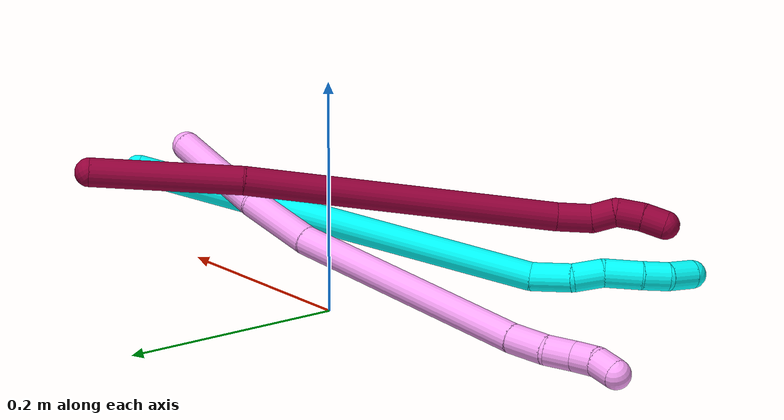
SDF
<sdf version="1.7">
 <world name="default">
  <model name="photoneo_s_sensor">
   <static>1</static>
   <pose>0 0 2 1.57079 1.57079 3.14159</pose>
   <link name="link">
    <inertial><mass>0.1</mass></inertial>
    <sensor name="sensor" type="depth">
     <update_rate>30</update_rate>
     <camera>
      <horizontal_fov>1.22</horizontal_fov>
      <image><width>1920</width><height>1200</height><format>B8G8R8</format></image>
      <clip><near>0.1</near><far>4</far></clip>
      <depth_camera><output>points</output></depth_camera>
     </camera>
     <plugin name="camera_plugin" filename="libgazebo_ros_depth_camera.so">
      <baseline>0.2</baseline>
      <alwaysOn>1</alwaysOn>
      <updateRate>0.0</updateRate>
      <cameraName>camera_ir</cameraName>
      <imageTopicName>/camera/color/image_raw</imageTopicName>
      <cameraInfoTopicName>/camera/color/camera_info</cameraInfoTopicName>
      <depthImageTopicName>/camera/depth/image_raw</depthImageTopicName>
      <depthImageCameraInfoTopicName>/camera/depth/camera_info</depthImageCameraInfoTopicName>
      <pointCloudTopicName>/camera/depth/points</pointCloudTopicName>
      <frameName>fr_optical</frameName>
      <pointCloudCutoff>0.1</pointCloudCutoff>
      <pointCloudCutoffMax>2.0</pointCloudCutoffMax>
      <distortionK1>0</distortionK1>
      <distortionK2>0</distortionK2>
      <distortionK3>0</distortionK3>
      <distortionT1>0</distortionT1>
      <distortionT2>0</distortionT2>
      <CxPrime>0</CxPrime>
      <Cx>0</Cx>
      <Cy>0</Cy>
      <focalLength>0</focalLength>
      <hackBaseline>0</hackBaseline>
     </plugin>
    </sensor>
   </link>
  </model>
  <model name="bin">
   <static>1</static>
   <link name="bottom">
    <collision name="collision-bottom">
     <pose>0 0 -0.01 0 -0 0</pose>
     <geometry><box><size>0.8 0.6 0.02</size></box></geometry>
     <surface>
      <friction><ode><mu>100</mu><mu2>100</mu2></ode></friction>
      <contact><collide_bitmask>65535</collide_bitmask></contact>
     </surface>
    </collision>
   </link>
   <link name="west_wall">
    <collision name="collision-west_wall">
     <pose>-0.41 0 0.1 0 -0 0</pose>
     <geometry><box><size>0.02 0.6 0.2</size></box></geometry>
     <surface>
      <friction><ode><mu>100</mu><mu2>100</mu2></ode></friction>
      <contact><collide_bitmask>65535</collide_bitmask></contact>
     </surface>
    </collision>
   </link>
   <link name="east_wall">
    <collision name="collision-east_wall">
     <pose>0.41 0 0.1 0 -0 0</pose>
     <geometry><box><size>0.02 0.6 0.2</size></box></geometry>
     <surface>
      <friction><ode><mu>100</mu><mu2>100</mu2></ode></friction>
      <contact><collide_bitmask>65535</collide_bitmask></contact>
     </surface>
    </collision>
   </link>
   <link name="south_wall">
    <collision name="collision-south_wall">
     <pose>0 -0.31 0.1 0 -0 0</pose>
     <geometry><box><size>0.8 0.02 0.2</size></box></geometry>
     <surface>
      <friction><ode><mu>100</mu><mu2>100</mu2></ode></friction>
      <contact><collide_bitmask>65535</collide_bitmask></contact>
     </surface>
    </collision>
   </link>
   <link name="north_wall">
    <collision name="collision-north_wall">
     <pose>0 0.31 0.1 0 -0 0</pose>
     <geometry><box><size>0.8 0.02 0.2</size></box></geometry>
     <surface>
      <friction><ode><mu>100</mu><mu2>100</mu2></ode></friction>
      <contact><collide_bitmask>65535</collide_bitmask></contact>
     </surface>
    </collision>
   </link>
  </model>
  <model name="3">
   <static>0</static>
   <link name="3">
    <collision name="collision-cylinder-e_1_1_4">
     <pose>-0.037752 -0.043192 -0.168126 2.89013 -0.214148 -1.4094</pose>
     <geometry><cylinder><radius>0.0125</radius><length>0.355287</length></cylinder></geometry>
     <surface>
      <friction><ode><mu>1.16</mu><mu2>1.16</mu2><slip1>0</slip1><slip2>0</slip2></ode></friction>
      <contact><ode><kp>1e+06</kp><kd>1</kd><max_vel>0</max_vel><min_depth>0.001</min_depth></ode></contact>
     </surface>
    </collision>
    <visual name="visual-cylinder-e_1_1_4">
     <pose>-0.037752 -0.043192 -0.168126 2.89013 -0.214148 -1.4094</pose>
     <geometry><cylinder><radius>0.0125</radius><length>0.355287</length></cylinder></geometry>
     <material><ambient>0.003922 1 0.996078 1</ambient></material>
    </visual>
    <collision name="collision-cylinder-e_2_4_5">
     <pose>-0.080118 -0.095655 -0.351369 2.59151 -0.254588 -0.851583</pose>
     <geometry><cylinder><radius>0.0125</radius><length>0.036646</length></cylinder></geometry>
     <surface>
      <friction><ode><mu>1.16</mu><mu2>1.16</mu2><slip1>0</slip1><slip2>0</slip2></ode></friction>
      <contact><ode><kp>1e+06</kp><kd>1</kd><max_vel>0</max_vel><min_depth>0.001</min_depth></ode></contact>
     </surface>
    </collision>
    <visual name="visual-cylinder-e_2_4_5">
     <pose>-0.080118 -0.095655 -0.351369 2.59151 -0.254588 -0.851583</pose>
     <geometry><cylinder><radius>0.0125</radius><length>0.036646</length></cylinder></geometry>
     <material><ambient>0.003922 1 0.996078 1</ambient></material>
    </visual>
    <collision name="collision-cylinder-e_3_5_6">
     <pose>-0.083504 -0.112171 -0.377684 2.56723 0.091865 0.308787</pose>
     <geometry><cylinder><radius>0.0125</radius><length>0.02679</length></cylinder></geometry>
     <surface>
      <friction><ode><mu>1.16</mu><mu2>1.16</mu2><slip1>0</slip1><slip2>0</slip2></ode></friction>
      <contact><ode><kp>1e+06</kp><kd>1</kd><max_vel>0</max_vel><min_depth>0.001</min_depth></ode></contact>
     </surface>
    </collision>
    <visual name="visual-cylinder-e_3_5_6">
     <pose>-0.083504 -0.112171 -0.377684 2.56723 0.091865 0.308787</pose>
     <geometry><cylinder><radius>0.0125</radius><length>0.02679</length></cylinder></geometry>
     <material><ambient>0.003922 1 0.996078 1</ambient></material>
    </visual>
    <collision name="collision-cylinder-e_4_6_7">
     <pose>-0.082581 -0.125444 -0.404382 2.7708 -0.018375 -0.0979</pose>
     <geometry><cylinder><radius>0.0125</radius><length>0.033266</length></cylinder></geometry>
     <surface>
      <friction><ode><mu>1.16</mu><mu2>1.16</mu2><slip1>0</slip1><slip2>0</slip2></ode></friction>
      <contact><ode><kp>1e+06</kp><kd>1</kd><max_vel>0</max_vel><min_depth>0.001</min_depth></ode></contact>
     </surface>
    </collision>
    <visual name="visual-cylinder-e_4_6_7">
     <pose>-0.082581 -0.125444 -0.404382 2.7708 -0.018375 -0.0979</pose>
     <geometry><cylinder><radius>0.0125</radius><length>0.033266</length></cylinder></geometry>
     <material><ambient>0.003922 1 0.996078 1</ambient></material>
    </visual>
    <collision name="collision-cylinder-e_5_7_8">
     <pose>-0.081372 -0.135155 -0.430953 2.82029 0.129124 0.759239</pose>
     <geometry><cylinder><radius>0.0125</radius><length>0.023531</length></cylinder></geometry>
     <surface>
      <friction><ode><mu>1.16</mu><mu2>1.16</mu2><slip1>0</slip1><slip2>0</slip2></ode></friction>
      <contact><ode><kp>1e+06</kp><kd>1</kd><max_vel>0</max_vel><min_depth>0.001</min_depth></ode></contact>
     </surface>
    </collision>
    <visual name="visual-cylinder-e_5_7_8">
     <pose>-0.081372 -0.135155 -0.430953 2.82029 0.129124 0.759239</pose>
     <geometry><cylinder><radius>0.0125</radius><length>0.023531</length></cylinder></geometry>
     <material><ambient>0.003922 1 0.996078 1</ambient></material>
    </visual>
    <collision name="collision-cylinder-e_6_8_2">
     <pose>-0.074537 -0.14179 -0.452644 2.87062 0.449637 2.06648</pose>
     <geometry><cylinder><radius>0.0125</radius><length>0.024479</length></cylinder></geometry>
     <surface>
      <friction><ode><mu>1.16</mu><mu2>1.16</mu2><slip1>0</slip1><slip2>0</slip2></ode></friction>
      <contact><ode><kp>1e+06</kp><kd>1</kd><max_vel>0</max_vel><min_depth>0.001</min_depth></ode></contact>
     </surface>
    </collision>
    <visual name="visual-cylinder-e_6_8_2">
     <pose>-0.074537 -0.14179 -0.452644 2.87062 0.449637 2.06648</pose>
     <geometry><cylinder><radius>0.0125</radius><length>0.024479</length></cylinder></geometry>
     <material><ambient>0.003922 1 0.996078 1</ambient></material>
    </visual>
    <collision name="collision-sphere-2">
     <pose>-0.069217 -0.144741 -0.463265 0 -0 0</pose>
     <geometry><sphere><radius>0.0125</radius></sphere></geometry>
     <surface>
      <friction><ode><mu>1.16</mu><mu2>1.16</mu2><slip1>0</slip1><slip2>0</slip2></ode></friction>
      <contact><ode><kp>1e+06</kp><kd>1</kd><max_vel>0</max_vel><min_depth>0.001</min_depth></ode></contact>
     </surface>
    </collision>
    <visual name="visual-sphere-2">
     <pose>-0.069217 -0.144741 -0.463265 0 -0 0</pose>
     <geometry><sphere><radius>0.0125</radius></sphere></geometry>
     <material><ambient>0.003922 1 0.996078 1</ambient></material>
    </visual>
    <collision name="collision-sphere-4">
     <pose>-0.075504 -0.086385 -0.336252 0 -0 0</pose>
     <geometry><sphere><radius>0.0125</radius></sphere></geometry>
     <surface>
      <friction><ode><mu>1.16</mu><mu2>1.16</mu2><slip1>0</slip1><slip2>0</slip2></ode></friction>
      <contact><ode><kp>1e+06</kp><kd>1</kd><max_vel>0</max_vel><min_depth>0.001</min_depth></ode></contact>
     </surface>
    </collision>
    <visual name="visual-sphere-4">
     <pose>-0.075504 -0.086385 -0.336252 0 -0 0</pose>
     <geometry><sphere><radius>0.0125</radius></sphere></geometry>
     <material><ambient>0.003922 1 0.996078 1</ambient></material>
    </visual>
    <collision name="collision-sphere-1">
     <geometry><sphere><radius>0.0125</radius></sphere></geometry>
     <surface>
      <friction><ode><mu>1.16</mu><mu2>1.16</mu2><slip1>0</slip1><slip2>0</slip2></ode></friction>
      <contact><ode><kp>1e+06</kp><kd>1</kd><max_vel>0</max_vel><min_depth>0.001</min_depth></ode></contact>
     </surface>
    </collision>
    <visual name="visual-sphere-1">
     <geometry><sphere><radius>0.0125</radius></sphere></geometry>
     <material><ambient>0.003922 1 0.996078 1</ambient></material>
    </visual>
    <collision name="collision-sphere-8">
     <pose>-0.079856 -0.13884 -0.442024 0 -0 0</pose>
     <geometry><sphere><radius>0.0125</radius></sphere></geometry>
     <surface>
      <friction><ode><mu>1.16</mu><mu2>1.16</mu2><slip1>0</slip1><slip2>0</slip2></ode></friction>
      <contact><ode><kp>1e+06</kp><kd>1</kd><max_vel>0</max_vel><min_depth>0.001</min_depth></ode></contact>
     </surface>
    </collision>
    <visual name="visual-sphere-8">
     <pose>-0.079856 -0.13884 -0.442024 0 -0 0</pose>
     <geometry><sphere><radius>0.0125</radius></sphere></geometry>
     <material><ambient>0.003922 1 0.996078 1</ambient></material>
    </visual>
    <collision name="collision-sphere-5">
     <pose>-0.084733 -0.104925 -0.366486 0 -0 0</pose>
     <geometry><sphere><radius>0.0125</radius></sphere></geometry>
     <surface>
      <friction><ode><mu>1.16</mu><mu2>1.16</mu2><slip1>0</slip1><slip2>0</slip2></ode></friction>
      <contact><ode><kp>1e+06</kp><kd>1</kd><max_vel>0</max_vel><min_depth>0.001</min_depth></ode></contact>
     </surface>
    </collision>
    <visual name="visual-sphere-5">
     <pose>-0.084733 -0.104925 -0.366486 0 -0 0</pose>
     <geometry><sphere><radius>0.0125</radius></sphere></geometry>
     <material><ambient>0.003922 1 0.996078 1</ambient></material>
    </visual>
    <collision name="collision-sphere-6">
     <pose>-0.082275 -0.119418 -0.388882 0 -0 0</pose>
     <geometry><sphere><radius>0.0125</radius></sphere></geometry>
     <surface>
      <friction><ode><mu>1.16</mu><mu2>1.16</mu2><slip1>0</slip1><slip2>0</slip2></ode></friction>
      <contact><ode><kp>1e+06</kp><kd>1</kd><max_vel>0</max_vel><min_depth>0.001</min_depth></ode></contact>
     </surface>
    </collision>
    <visual name="visual-sphere-6">
     <pose>-0.082275 -0.119418 -0.388882 0 -0 0</pose>
     <geometry><sphere><radius>0.0125</radius></sphere></geometry>
     <material><ambient>0.003922 1 0.996078 1</ambient></material>
    </visual>
    <collision name="collision-sphere-7">
     <pose>-0.082887 -0.13147 -0.419882 0 -0 0</pose>
     <geometry><sphere><radius>0.0125</radius></sphere></geometry>
     <surface>
      <friction><ode><mu>1.16</mu><mu2>1.16</mu2><slip1>0</slip1><slip2>0</slip2></ode></friction>
      <contact><ode><kp>1e+06</kp><kd>1</kd><max_vel>0</max_vel><min_depth>0.001</min_depth></ode></contact>
     </surface>
    </collision>
    <visual name="visual-sphere-7">
     <pose>-0.082887 -0.13147 -0.419882 0 -0 0</pose>
     <geometry><sphere><radius>0.0125</radius></sphere></geometry>
     <material><ambient>0.003922 1 0.996078 1</ambient></material>
    </visual>
    <inertial>
     <pose>-0.050145 -0.065361 -0.234802 0 -0 0</pose>
     <mass>0.5</mass>
     <inertia>
      <ixx>-0.003024</ixx>
      <ixy>0</ixy>
      <ixz>0</ixz>
      <iyy>-0.004027</iyy>
      <iyz>0</iyz>
      <izz>0.00168</izz>
     </inertia>
    </inertial>
   </link>
   <pose>0.187934 0.068357 0.09581 -1.12445 -0.220109 -0.631286</pose>
  </model>
  <model name="4">
   <static>0</static>
   <link name="4">
    <collision name="collision-cylinder-e_1_1_4">
     <pose>-0.054612 -0.006445 0.005133 0.898232 -1.42105 -0.786235</pose>
     <geometry><cylinder><radius>0.0125</radius><length>0.110461</length></cylinder></geometry>
     <surface>
      <friction><ode><mu>1.16</mu><mu2>1.16</mu2><slip1>0</slip1><slip2>0</slip2></ode></friction>
      <contact><ode><kp>1e+06</kp><kd>1</kd><max_vel>0</max_vel><min_depth>0.001</min_depth></ode></contact>
     </surface>
    </collision>
    <visual name="visual-cylinder-e_1_1_4">
     <pose>-0.054612 -0.006445 0.005133 0.898232 -1.42105 -0.786235</pose>
     <geometry><cylinder><radius>0.0125</radius><length>0.110461</length></cylinder></geometry>
     <material><ambient>1 0.65098 0.996078 1</ambient></material>
    </visual>
    <collision name="collision-cylinder-e_2_4_5">
     <pose>-0.141984 -0.02128 0.00933 1.68197 -1.3186 -1.42778</pose>
     <geometry><cylinder><radius>0.0125</radius><length>0.067659</length></cylinder></geometry>
     <surface>
      <friction><ode><mu>1.16</mu><mu2>1.16</mu2><slip1>0</slip1><slip2>0</slip2></ode></friction>
      <contact><ode><kp>1e+06</kp><kd>1</kd><max_vel>0</max_vel><min_depth>0.001</min_depth></ode></contact>
     </surface>
    </collision>
    <visual name="visual-cylinder-e_2_4_5">
     <pose>-0.141984 -0.02128 0.00933 1.68197 -1.3186 -1.42778</pose>
     <geometry><cylinder><radius>0.0125</radius><length>0.067659</length></cylinder></geometry>
     <material><ambient>1 0.65098 0.996078 1</ambient></material>
    </visual>
    <collision name="collision-cylinder-e_3_5_6">
     <pose>-0.277369 -0.071227 0.010292 1.52515 -1.18566 -1.14372</pose>
     <geometry><cylinder><radius>0.0125</radius><length>0.221473</length></cylinder></geometry>
     <surface>
      <friction><ode><mu>1.16</mu><mu2>1.16</mu2><slip1>0</slip1><slip2>0</slip2></ode></friction>
      <contact><ode><kp>1e+06</kp><kd>1</kd><max_vel>0</max_vel><min_depth>0.001</min_depth></ode></contact>
     </surface>
    </collision>
    <visual name="visual-cylinder-e_3_5_6">
     <pose>-0.277369 -0.071227 0.010292 1.52515 -1.18566 -1.14372</pose>
     <geometry><cylinder><radius>0.0125</radius><length>0.221473</length></cylinder></geometry>
     <material><ambient>1 0.65098 0.996078 1</ambient></material>
    </visual>
    <collision name="collision-cylinder-e_4_6_7">
     <pose>-0.394499 -0.120314 0.013057 1.45617 -1.08939 -0.990395</pose>
     <geometry><cylinder><radius>0.0125</radius><length>0.032731</length></cylinder></geometry>
     <surface>
      <friction><ode><mu>1.16</mu><mu2>1.16</mu2><slip1>0</slip1><slip2>0</slip2></ode></friction>
      <contact><ode><kp>1e+06</kp><kd>1</kd><max_vel>0</max_vel><min_depth>0.001</min_depth></ode></contact>
     </surface>
    </collision>
    <visual name="visual-cylinder-e_4_6_7">
     <pose>-0.394499 -0.120314 0.013057 1.45617 -1.08939 -0.990395</pose>
     <geometry><cylinder><radius>0.0125</radius><length>0.032731</length></cylinder></geometry>
     <material><ambient>1 0.65098 0.996078 1</ambient></material>
    </visual>
    <collision name="collision-cylinder-e_5_7_8">
     <pose>-0.418182 -0.135916 0.012748 1.71537 -0.843999 -0.957577</pose>
     <geometry><cylinder><radius>0.0125</radius><length>0.024559</length></cylinder></geometry>
     <surface>
      <friction><ode><mu>1.16</mu><mu2>1.16</mu2><slip1>0</slip1><slip2>0</slip2></ode></friction>
      <contact><ode><kp>1e+06</kp><kd>1</kd><max_vel>0</max_vel><min_depth>0.001</min_depth></ode></contact>
     </surface>
    </collision>
    <visual name="visual-cylinder-e_5_7_8">
     <pose>-0.418182 -0.135916 0.012748 1.71537 -0.843999 -0.957577</pose>
     <geometry><cylinder><radius>0.0125</radius><length>0.024559</length></cylinder></geometry>
     <material><ambient>1 0.65098 0.996078 1</ambient></material>
    </visual>
    <collision name="collision-cylinder-e_6_8_9">
     <pose>-0.437125 -0.148836 0.013787 1.14204 -1.07146 -0.728664</pose>
     <geometry><cylinder><radius>0.0125</radius><length>0.022251</length></cylinder></geometry>
     <surface>
      <friction><ode><mu>1.16</mu><mu2>1.16</mu2><slip1>0</slip1><slip2>0</slip2></ode></friction>
      <contact><ode><kp>1e+06</kp><kd>1</kd><max_vel>0</max_vel><min_depth>0.001</min_depth></ode></contact>
     </surface>
    </collision>
    <visual name="visual-cylinder-e_6_8_9">
     <pose>-0.437125 -0.148836 0.013787 1.14204 -1.07146 -0.728664</pose>
     <geometry><cylinder><radius>0.0125</radius><length>0.022251</length></cylinder></geometry>
     <material><ambient>1 0.65098 0.996078 1</ambient></material>
    </visual>
    <collision name="collision-cylinder-e_7_9_2">
     <pose>-0.457033 -0.156124 0.016206 1.48749 -1.33355 -1.25336</pose>
     <geometry><cylinder><radius>0.0125</radius><length>0.020865</length></cylinder></geometry>
     <surface>
      <friction><ode><mu>1.16</mu><mu2>1.16</mu2><slip1>0</slip1><slip2>0</slip2></ode></friction>
      <contact><ode><kp>1e+06</kp><kd>1</kd><max_vel>0</max_vel><min_depth>0.001</min_depth></ode></contact>
     </surface>
    </collision>
    <visual name="visual-cylinder-e_7_9_2">
     <pose>-0.457033 -0.156124 0.016206 1.48749 -1.33355 -1.25336</pose>
     <geometry><cylinder><radius>0.0125</radius><length>0.020865</length></cylinder></geometry>
     <material><ambient>1 0.65098 0.996078 1</ambient></material>
    </visual>
    <collision name="collision-sphere-2">
     <pose>-0.467173 -0.158568 0.01641 0 -0 0</pose>
     <geometry><sphere><radius>0.0125</radius></sphere></geometry>
     <surface>
      <friction><ode><mu>1.16</mu><mu2>1.16</mu2><slip1>0</slip1><slip2>0</slip2></ode></friction>
      <contact><ode><kp>1e+06</kp><kd>1</kd><max_vel>0</max_vel><min_depth>0.001</min_depth></ode></contact>
     </surface>
    </collision>
    <visual name="visual-sphere-2">
     <pose>-0.467173 -0.158568 0.01641 0 -0 0</pose>
     <geometry><sphere><radius>0.0125</radius></sphere></geometry>
     <material><ambient>1 0.65098 0.996078 1</ambient></material>
    </visual>
    <collision name="collision-sphere-9">
     <pose>-0.446893 -0.153681 0.016002 0 -0 0</pose>
     <geometry><sphere><radius>0.0125</radius></sphere></geometry>
     <surface>
      <friction><ode><mu>1.16</mu><mu2>1.16</mu2><slip1>0</slip1><slip2>0</slip2></ode></friction>
      <contact><ode><kp>1e+06</kp><kd>1</kd><max_vel>0</max_vel><min_depth>0.001</min_depth></ode></contact>
     </surface>
    </collision>
    <visual name="visual-sphere-9">
     <pose>-0.446893 -0.153681 0.016002 0 -0 0</pose>
     <geometry><sphere><radius>0.0125</radius></sphere></geometry>
     <material><ambient>1 0.65098 0.996078 1</ambient></material>
    </visual>
    <collision name="collision-sphere-4">
     <pose>-0.109225 -0.01289 0.010266 0 -0 0</pose>
     <geometry><sphere><radius>0.0125</radius></sphere></geometry>
     <surface>
      <friction><ode><mu>1.16</mu><mu2>1.16</mu2><slip1>0</slip1><slip2>0</slip2></ode></friction>
      <contact><ode><kp>1e+06</kp><kd>1</kd><max_vel>0</max_vel><min_depth>0.001</min_depth></ode></contact>
     </surface>
    </collision>
    <visual name="visual-sphere-4">
     <pose>-0.109225 -0.01289 0.010266 0 -0 0</pose>
     <geometry><sphere><radius>0.0125</radius></sphere></geometry>
     <material><ambient>1 0.65098 0.996078 1</ambient></material>
    </visual>
    <collision name="collision-sphere-1">
     <geometry><sphere><radius>0.0125</radius></sphere></geometry>
     <surface>
      <friction><ode><mu>1.16</mu><mu2>1.16</mu2><slip1>0</slip1><slip2>0</slip2></ode></friction>
      <contact><ode><kp>1e+06</kp><kd>1</kd><max_vel>0</max_vel><min_depth>0.001</min_depth></ode></contact>
     </surface>
    </collision>
    <visual name="visual-sphere-1">
     <geometry><sphere><radius>0.0125</radius></sphere></geometry>
     <material><ambient>1 0.65098 0.996078 1</ambient></material>
    </visual>
    <collision name="collision-sphere-8">
     <pose>-0.427358 -0.14399 0.011572 0 -0 0</pose>
     <geometry><sphere><radius>0.0125</radius></sphere></geometry>
     <surface>
      <friction><ode><mu>1.16</mu><mu2>1.16</mu2><slip1>0</slip1><slip2>0</slip2></ode></friction>
      <contact><ode><kp>1e+06</kp><kd>1</kd><max_vel>0</max_vel><min_depth>0.001</min_depth></ode></contact>
     </surface>
    </collision>
    <visual name="visual-sphere-8">
     <pose>-0.427358 -0.14399 0.011572 0 -0 0</pose>
     <geometry><sphere><radius>0.0125</radius></sphere></geometry>
     <material><ambient>1 0.65098 0.996078 1</ambient></material>
    </visual>
    <collision name="collision-sphere-5">
     <pose>-0.174744 -0.029669 0.008393 0 -0 0</pose>
     <geometry><sphere><radius>0.0125</radius></sphere></geometry>
     <surface>
      <friction><ode><mu>1.16</mu><mu2>1.16</mu2><slip1>0</slip1><slip2>0</slip2></ode></friction>
      <contact><ode><kp>1e+06</kp><kd>1</kd><max_vel>0</max_vel><min_depth>0.001</min_depth></ode></contact>
     </surface>
    </collision>
    <visual name="visual-sphere-5">
     <pose>-0.174744 -0.029669 0.008393 0 -0 0</pose>
     <geometry><sphere><radius>0.0125</radius></sphere></geometry>
     <material><ambient>1 0.65098 0.996078 1</ambient></material>
    </visual>
    <collision name="collision-sphere-6">
     <pose>-0.379994 -0.112786 0.01219 0 -0 0</pose>
     <geometry><sphere><radius>0.0125</radius></sphere></geometry>
     <surface>
      <friction><ode><mu>1.16</mu><mu2>1.16</mu2><slip1>0</slip1><slip2>0</slip2></ode></friction>
      <contact><ode><kp>1e+06</kp><kd>1</kd><max_vel>0</max_vel><min_depth>0.001</min_depth></ode></contact>
     </surface>
    </collision>
    <visual name="visual-sphere-6">
     <pose>-0.379994 -0.112786 0.01219 0 -0 0</pose>
     <geometry><sphere><radius>0.0125</radius></sphere></geometry>
     <material><ambient>1 0.65098 0.996078 1</ambient></material>
    </visual>
    <collision name="collision-sphere-7">
     <pose>-0.409005 -0.127842 0.013924 0 -0 0</pose>
     <geometry><sphere><radius>0.0125</radius></sphere></geometry>
     <surface>
      <friction><ode><mu>1.16</mu><mu2>1.16</mu2><slip1>0</slip1><slip2>0</slip2></ode></friction>
      <contact><ode><kp>1e+06</kp><kd>1</kd><max_vel>0</max_vel><min_depth>0.001</min_depth></ode></contact>
     </surface>
    </collision>
    <visual name="visual-sphere-7">
     <pose>-0.409005 -0.127842 0.013924 0 -0 0</pose>
     <geometry><sphere><radius>0.0125</radius></sphere></geometry>
     <material><ambient>1 0.65098 0.996078 1</ambient></material>
    </visual>
    <inertial>
     <pose>-0.239028 -0.063544 0.009726 0 -0 0</pose>
     <mass>0.5</mass>
     <inertia>
      <ixx>-0.000214</ixx>
      <ixy>0</ixy>
      <ixz>0</ixz>
      <iyy>0.000589</iyy>
      <iyz>0</iyz>
      <izz>0.001368</izz>
     </inertia>
    </inertial>
   </link>
   <pose>0.17235 0.028094 0.11367 -0.42195 -0.385382 -0.106298</pose>
  </model>
  <model name="8">
   <static>0</static>
   <link name="8">
    <collision name="collision-cylinder-e_1_1_4">
     <pose>-0.013189 -0.046564 0.043861 0.815282 -0.20333 -0.088051</pose>
     <geometry><cylinder><radius>0.0125</radius><length>0.130629</length></cylinder></geometry>
     <surface>
      <friction><ode><mu>1.16</mu><mu2>1.16</mu2><slip1>0</slip1><slip2>0</slip2></ode></friction>
      <contact><ode><kp>1e+06</kp><kd>1</kd><max_vel>0</max_vel><min_depth>0.001</min_depth></ode></contact>
     </surface>
    </collision>
    <visual name="visual-cylinder-e_1_1_4">
     <pose>-0.013189 -0.046564 0.043861 0.815282 -0.20333 -0.088051</pose>
     <geometry><cylinder><radius>0.0125</radius><length>0.130629</length></cylinder></geometry>
     <material><ambient>0.584314 0 0.227451 1</ambient></material>
    </visual>
    <collision name="collision-cylinder-e_2_4_5">
     <pose>-0.053363 -0.201685 0.165726 0.947728 -0.199188 -0.102401</pose>
     <geometry><cylinder><radius>0.0125</radius><length>0.272743</length></cylinder></geometry>
     <surface>
      <friction><ode><mu>1.16</mu><mu2>1.16</mu2><slip1>0</slip1><slip2>0</slip2></ode></friction>
      <contact><ode><kp>1e+06</kp><kd>1</kd><max_vel>0</max_vel><min_depth>0.001</min_depth></ode></contact>
     </surface>
    </collision>
    <visual name="visual-cylinder-e_2_4_5">
     <pose>-0.053363 -0.201685 0.165726 0.947728 -0.199188 -0.102401</pose>
     <geometry><cylinder><radius>0.0125</radius><length>0.272743</length></cylinder></geometry>
     <material><ambient>0.584314 0 0.227451 1</ambient></material>
    </visual>
    <collision name="collision-cylinder-e_3_5_6">
     <pose>-0.083795 -0.320906 0.254639 0.774026 -0.222254 -0.090896</pose>
     <geometry><cylinder><radius>0.0125</radius><length>0.031281</length></cylinder></geometry>
     <surface>
      <friction><ode><mu>1.16</mu><mu2>1.16</mu2><slip1>0</slip1><slip2>0</slip2></ode></friction>
      <contact><ode><kp>1e+06</kp><kd>1</kd><max_vel>0</max_vel><min_depth>0.001</min_depth></ode></contact>
     </surface>
    </collision>
    <visual name="visual-cylinder-e_3_5_6">
     <pose>-0.083795 -0.320906 0.254639 0.774026 -0.222254 -0.090896</pose>
     <geometry><cylinder><radius>0.0125</radius><length>0.031281</length></cylinder></geometry>
     <material><ambient>0.584314 0 0.227451 1</ambient></material>
    </visual>
    <collision name="collision-cylinder-e_4_6_7">
     <pose>-0.087868 -0.335843 0.275562 0.40334 -0.057381 -0.011734</pose>
     <geometry><cylinder><radius>0.0125</radius><length>0.021811</length></cylinder></geometry>
     <surface>
      <friction><ode><mu>1.16</mu><mu2>1.16</mu2><slip1>0</slip1><slip2>0</slip2></ode></friction>
      <contact><ode><kp>1e+06</kp><kd>1</kd><max_vel>0</max_vel><min_depth>0.001</min_depth></ode></contact>
     </surface>
    </collision>
    <visual name="visual-cylinder-e_4_6_7">
     <pose>-0.087868 -0.335843 0.275562 0.40334 -0.057381 -0.011734</pose>
     <geometry><cylinder><radius>0.0125</radius><length>0.021811</length></cylinder></geometry>
     <material><ambient>0.584314 0 0.227451 1</ambient></material>
    </visual>
    <collision name="collision-cylinder-e_5_7_8">
     <pose>-0.092717 -0.347347 0.293227 0.757192 -0.38156 -0.153346</pose>
     <geometry><cylinder><radius>0.0125</radius><length>0.022685</length></cylinder></geometry>
     <surface>
      <friction><ode><mu>1.16</mu><mu2>1.16</mu2><slip1>0</slip1><slip2>0</slip2></ode></friction>
      <contact><ode><kp>1e+06</kp><kd>1</kd><max_vel>0</max_vel><min_depth>0.001</min_depth></ode></contact>
     </surface>
    </collision>
    <visual name="visual-cylinder-e_5_7_8">
     <pose>-0.092717 -0.347347 0.293227 0.757192 -0.38156 -0.153346</pose>
     <geometry><cylinder><radius>0.0125</radius><length>0.022685</length></cylinder></geometry>
     <material><ambient>0.584314 0 0.227451 1</ambient></material>
    </visual>
    <collision name="collision-cylinder-e_6_8_2">
     <pose>-0.10227 -0.361047 0.307076 0.806713 -0.536654 -0.233611</pose>
     <geometry><cylinder><radius>0.0125</radius><length>0.02085</length></cylinder></geometry>
     <surface>
      <friction><ode><mu>1.16</mu><mu2>1.16</mu2><slip1>0</slip1><slip2>0</slip2></ode></friction>
      <contact><ode><kp>1e+06</kp><kd>1</kd><max_vel>0</max_vel><min_depth>0.001</min_depth></ode></contact>
     </surface>
    </collision>
    <visual name="visual-cylinder-e_6_8_2">
     <pose>-0.10227 -0.361047 0.307076 0.806713 -0.536654 -0.233611</pose>
     <geometry><cylinder><radius>0.0125</radius><length>0.02085</length></cylinder></geometry>
     <material><ambient>0.584314 0 0.227451 1</ambient></material>
    </visual>
    <collision name="collision-sphere-2">
     <pose>-0.1076 -0.367516 0.313275 0 -0 0</pose>
     <geometry><sphere><radius>0.0125</radius></sphere></geometry>
     <surface>
      <friction><ode><mu>1.16</mu><mu2>1.16</mu2><slip1>0</slip1><slip2>0</slip2></ode></friction>
      <contact><ode><kp>1e+06</kp><kd>1</kd><max_vel>0</max_vel><min_depth>0.001</min_depth></ode></contact>
     </surface>
    </collision>
    <visual name="visual-sphere-2">
     <pose>-0.1076 -0.367516 0.313275 0 -0 0</pose>
     <geometry><sphere><radius>0.0125</radius></sphere></geometry>
     <material><ambient>0.584314 0 0.227451 1</ambient></material>
    </visual>
    <collision name="collision-sphere-4">
     <pose>-0.026378 -0.093129 0.087722 0 -0 0</pose>
     <geometry><sphere><radius>0.0125</radius></sphere></geometry>
     <surface>
      <friction><ode><mu>1.16</mu><mu2>1.16</mu2><slip1>0</slip1><slip2>0</slip2></ode></friction>
      <contact><ode><kp>1e+06</kp><kd>1</kd><max_vel>0</max_vel><min_depth>0.001</min_depth></ode></contact>
     </surface>
    </collision>
    <visual name="visual-sphere-4">
     <pose>-0.026378 -0.093129 0.087722 0 -0 0</pose>
     <geometry><sphere><radius>0.0125</radius></sphere></geometry>
     <material><ambient>0.584314 0 0.227451 1</ambient></material>
    </visual>
    <collision name="collision-sphere-1">
     <geometry><sphere><radius>0.0125</radius></sphere></geometry>
     <surface>
      <friction><ode><mu>1.16</mu><mu2>1.16</mu2><slip1>0</slip1><slip2>0</slip2></ode></friction>
      <contact><ode><kp>1e+06</kp><kd>1</kd><max_vel>0</max_vel><min_depth>0.001</min_depth></ode></contact>
     </surface>
    </collision>
    <visual name="visual-sphere-1">
     <geometry><sphere><radius>0.0125</radius></sphere></geometry>
     <material><ambient>0.584314 0 0.227451 1</ambient></material>
    </visual>
    <collision name="collision-sphere-8">
     <pose>-0.09694 -0.354578 0.300878 0 -0 0</pose>
     <geometry><sphere><radius>0.0125</radius></sphere></geometry>
     <surface>
      <friction><ode><mu>1.16</mu><mu2>1.16</mu2><slip1>0</slip1><slip2>0</slip2></ode></friction>
      <contact><ode><kp>1e+06</kp><kd>1</kd><max_vel>0</max_vel><min_depth>0.001</min_depth></ode></contact>
     </surface>
    </collision>
    <visual name="visual-sphere-8">
     <pose>-0.09694 -0.354578 0.300878 0 -0 0</pose>
     <geometry><sphere><radius>0.0125</radius></sphere></geometry>
     <material><ambient>0.584314 0 0.227451 1</ambient></material>
    </visual>
    <collision name="collision-sphere-5">
     <pose>-0.080347 -0.310242 0.243729 0 -0 0</pose>
     <geometry><sphere><radius>0.0125</radius></sphere></geometry>
     <surface>
      <friction><ode><mu>1.16</mu><mu2>1.16</mu2><slip1>0</slip1><slip2>0</slip2></ode></friction>
      <contact><ode><kp>1e+06</kp><kd>1</kd><max_vel>0</max_vel><min_depth>0.001</min_depth></ode></contact>
     </surface>
    </collision>
    <visual name="visual-sphere-5">
     <pose>-0.080347 -0.310242 0.243729 0 -0 0</pose>
     <geometry><sphere><radius>0.0125</radius></sphere></geometry>
     <material><ambient>0.584314 0 0.227451 1</ambient></material>
    </visual>
    <collision name="collision-sphere-6">
     <pose>-0.087242 -0.33157 0.265548 0 -0 0</pose>
     <geometry><sphere><radius>0.0125</radius></sphere></geometry>
     <surface>
      <friction><ode><mu>1.16</mu><mu2>1.16</mu2><slip1>0</slip1><slip2>0</slip2></ode></friction>
      <contact><ode><kp>1e+06</kp><kd>1</kd><max_vel>0</max_vel><min_depth>0.001</min_depth></ode></contact>
     </surface>
    </collision>
    <visual name="visual-sphere-6">
     <pose>-0.087242 -0.33157 0.265548 0 -0 0</pose>
     <geometry><sphere><radius>0.0125</radius></sphere></geometry>
     <material><ambient>0.584314 0 0.227451 1</ambient></material>
    </visual>
    <collision name="collision-sphere-7">
     <pose>-0.088493 -0.340117 0.285576 0 -0 0</pose>
     <geometry><sphere><radius>0.0125</radius></sphere></geometry>
     <surface>
      <friction><ode><mu>1.16</mu><mu2>1.16</mu2><slip1>0</slip1><slip2>0</slip2></ode></friction>
      <contact><ode><kp>1e+06</kp><kd>1</kd><max_vel>0</max_vel><min_depth>0.001</min_depth></ode></contact>
     </surface>
    </collision>
    <visual name="visual-sphere-7">
     <pose>-0.088493 -0.340117 0.285576 0 -0 0</pose>
     <geometry><sphere><radius>0.0125</radius></sphere></geometry>
     <material><ambient>0.584314 0 0.227451 1</ambient></material>
    </visual>
    <inertial>
     <pose>-0.050101 -0.187724 0.155921 0 -0 0</pose>
     <mass>0.5</mass>
     <inertia>
      <ixx>0.001657</ixx>
      <ixy>0</ixy>
      <ixz>0</ixz>
      <iyy>0.000939</iyy>
      <iyz>0</iyz>
      <izz>0.001898</izz>
     </inertia>
    </inertial>
   </link>
   <pose>0.135061 0.152429 0.118262 0.641121 -0.796047 -0.390854</pose>
  </model>
 </world>
</sdf>
